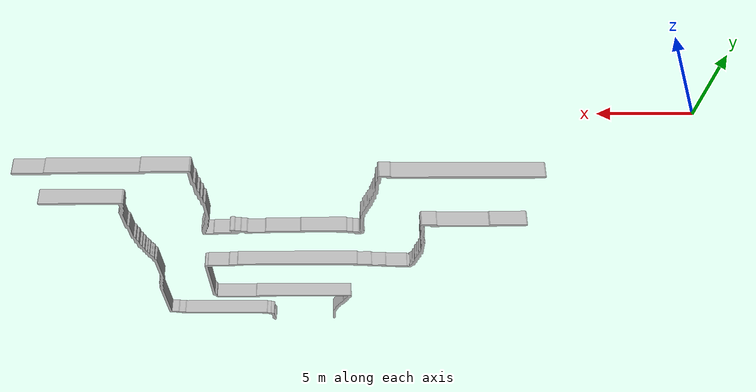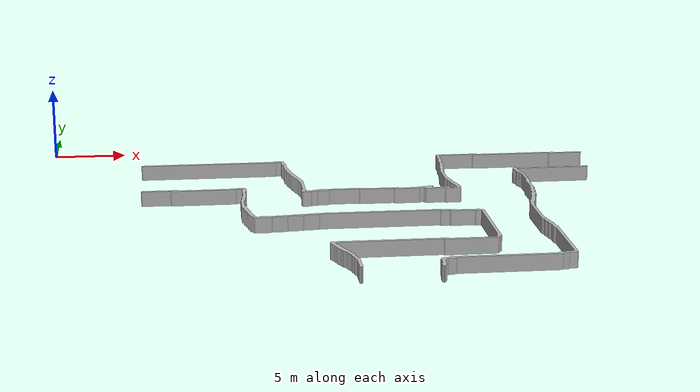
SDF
<?xml version="1.0" ?>
<sdf version="1.4">
  <model name="my_world">
    <link name="link">
      <inertial>
        <mass>1</mass>
        <inertia>
          <ixx>0.0</ixx>
          <ixy>0.0</ixy>
          <ixz>0.0</ixz>
          <iyy>0.0</iyy>
          <iyz>0.0</iyz>
          <izz>0.0</izz>
        </inertia>
      </inertial>
      <collision name="collision">
        <pose>0 0 0 0 0 0</pose>
        <geometry>
          <mesh>
            <uri>model://my_world/map1.stl</uri>
          </mesh>
        </geometry>
      </collision>
      <visual name="visual">
        <pose>0 0 0 0 0 0</pose>
        <geometry>
          <mesh>
            <uri>model://my_world/map1.stl</uri>
          </mesh>
        </geometry>
      </visual>
    </link>
    <static>1</static>
  </model>
</sdf>
